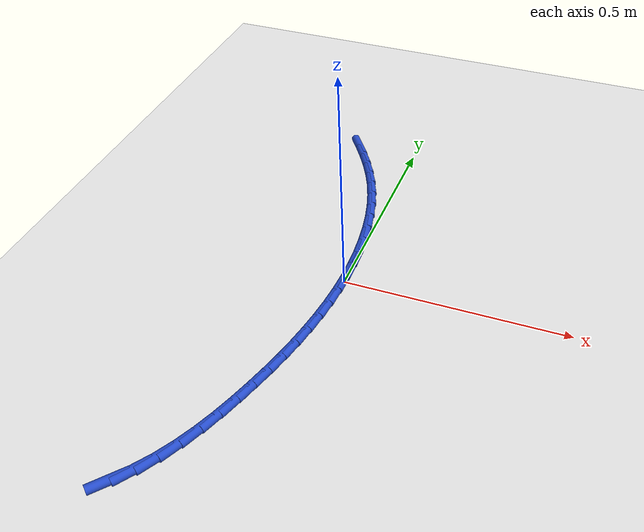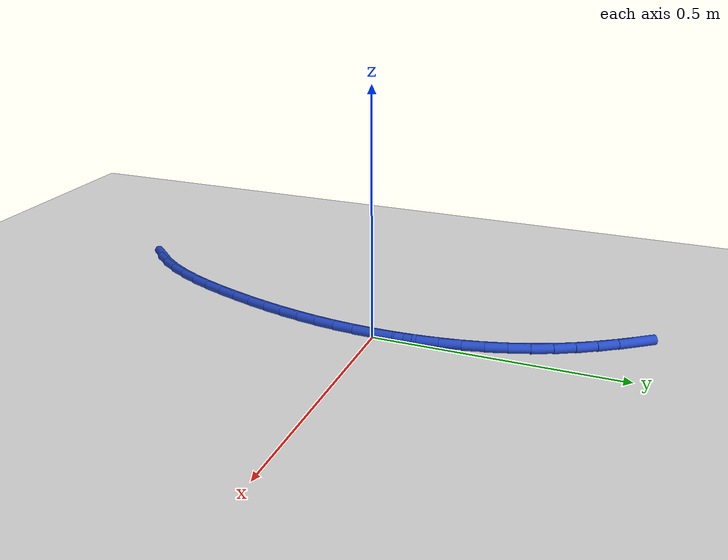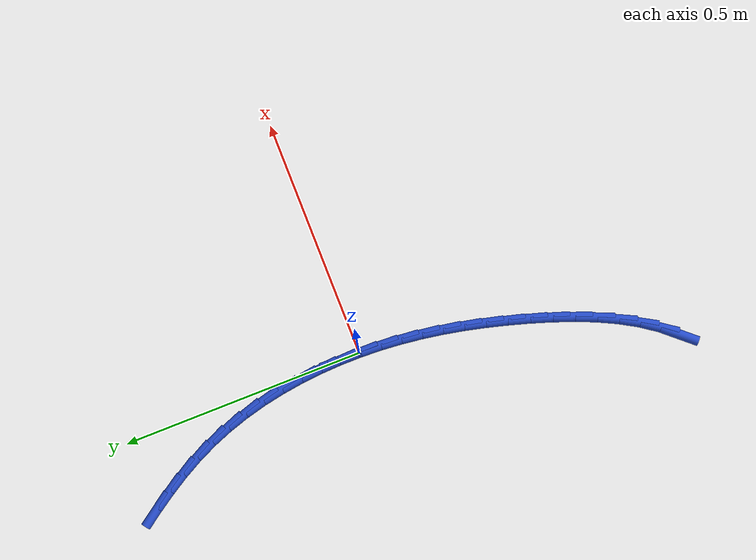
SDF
<sdf version="1.6">
 <world name="default">
  <model name="ground_plane">
   <static>1</static>
   <link name="link">
    <collision name="collision">
     <geometry><plane><normal>0 0 1</normal><size>100 100</size></plane></geometry>
     <surface><friction><ode><mu>100</mu><mu2>50</mu2></ode></friction></surface>
    </collision>
    <visual name="visual">
     <cast_shadows>0</cast_shadows>
     <geometry><plane><normal>0 0 1</normal><size>100 100</size></plane></geometry>
     <material>
      <script><uri>file://media/materials/scripts/gazebo.material</uri><name>Gazebo/WhiteGlow</name></script>
     </material>
    </visual>
   </link>
  </model>
  <model name="line">
   <link name="link_0">
    <pose>-2.168404344971009e-17 -2.7755575615628914e-17 0.01 0 1.57 -1.5700291982250192</pose>
    <collision name="collision">
     <geometry><cylinder><radius>0.01</radius><length>0.08</length></cylinder></geometry>
    </collision>
    <visual name="visual">
     <material>
      <script><name>Gazebo/Blue</name><uri>file://media/materials/scripts/gazebo.material</uri></script>
     </material>
     <geometry><cylinder><radius>0.01</radius><length>0.08</length></cylinder></geometry>
    </visual>
   </link>
   <link name="link_1">
    <pose>-3.3373400542923814e-05 0.043504303329024246 0.01 0 1.57 -1.5256582486725725</pose>
    <collision name="collision">
     <geometry><cylinder><radius>0.01</radius><length>0.08</length></cylinder></geometry>
    </collision>
    <visual name="visual">
     <material>
      <script><name>Gazebo/Blue</name><uri>file://media/materials/scripts/gazebo.material</uri></script>
     </material>
     <geometry><cylinder><radius>0.01</radius><length>0.08</length></cylinder></geometry>
    </visual>
   </link>
   <link name="link_2">
    <pose>-0.0020077036784223834 0.08721438833815535 0.01 0 1.57 -1.4792710099667985</pose>
    <collision name="collision">
     <geometry><cylinder><radius>0.01</radius><length>0.08</length></cylinder></geometry>
    </collision>
    <visual name="visual">
     <material>
      <script><name>Gazebo/Blue</name><uri>file://media/materials/scripts/gazebo.material</uri></script>
     </material>
     <geometry><cylinder><radius>0.01</radius><length>0.08</length></cylinder></geometry>
    </visual>
   </link>
   <link name="link_3">
    <pose>-0.006017554612834082 0.13090337112714434 0.01 0 1.57 -1.4303867277252909</pose>
    <collision name="collision">
     <geometry><cylinder><radius>0.01</radius><length>0.08</length></cylinder></geometry>
    </collision>
    <visual name="visual">
     <material>
      <script><name>Gazebo/Blue</name><uri>file://media/materials/scripts/gazebo.material</uri></script>
     </material>
     <geometry><cylinder><radius>0.01</radius><length>0.08</length></cylinder></geometry>
    </visual>
   </link>
   <link name="link_4">
    <pose>-0.012157489982973701 0.17434436779574228 0.01 0 1.57 -1.3785227347976274</pose>
    <collision name="collision">
     <geometry><cylinder><radius>0.01</radius><length>0.08</length></cylinder></geometry>
    </collision>
    <visual name="visual">
     <material>
      <script><name>Gazebo/Blue</name><uri>file://media/materials/scripts/gazebo.material</uri></script>
     </material>
     <geometry><cylinder><radius>0.01</radius><length>0.08</length></cylinder></geometry>
    </visual>
   </link>
   <link name="link_5">
    <pose>-0.020522073568036918 0.2173104944437 0.01 0 1.57 -1.3231982960085122</pose>
    <collision name="collision">
     <geometry><cylinder><radius>0.01</radius><length>0.08</length></cylinder></geometry>
    </collision>
    <visual name="visual">
     <material>
      <script><name>Gazebo/Blue</name><uri>file://media/materials/scripts/gazebo.material</uri></script>
     </material>
     <geometry><cylinder><radius>0.01</radius><length>0.08</length></cylinder></geometry>
    </visual>
   </link>
   <link name="link_6">
    <pose>-0.0312058691472194 0.25957486717076844 0.01 0 1.57 -1.263945834330037</pose>
    <collision name="collision">
     <geometry><cylinder><radius>0.01</radius><length>0.08</length></cylinder></geometry>
    </collision>
    <visual name="visual">
     <material>
      <script><name>Gazebo/Blue</name><uri>file://media/materials/scripts/gazebo.material</uri></script>
     </material>
     <geometry><cylinder><radius>0.01</radius><length>0.08</length></cylinder></geometry>
    </visual>
   </link>
   <link name="link_7">
    <pose>-0.044303440499716844 0.30091060207669873 0.01 0 1.57 -1.2003315872761966</pose>
    <collision name="collision">
     <geometry><cylinder><radius>0.01</radius><length>0.08</length></cylinder></geometry>
    </collision>
    <visual name="visual">
     <material>
      <script><name>Gazebo/Blue</name><uri>file://media/materials/scripts/gazebo.material</uri></script>
     </material>
     <geometry><cylinder><radius>0.01</radius><length>0.08</length></cylinder></geometry>
    </visual>
   </link>
   <link name="link_8">
    <pose>-0.05990935140472492 0.3410908152612417 0.01 0 1.57 -1.1340542222167505</pose>
    <collision name="collision">
     <geometry><cylinder><radius>0.01</radius><length>0.08</length></cylinder></geometry>
    </collision>
    <visual name="visual">
     <material>
      <script><name>Gazebo/Blue</name><uri>file://media/materials/scripts/gazebo.material</uri></script>
     </material>
     <geometry><cylinder><radius>0.01</radius><length>0.08</length></cylinder></geometry>
    </visual>
   </link>
   <link name="link_9">
    <pose>-0.07805070515592961 0.3799534872015394 0.01 0 1.57 -1.0740796577184268</pose>
    <collision name="collision">
     <geometry><cylinder><radius>0.01</radius><length>0.08</length></cylinder></geometry>
    </collision>
    <visual name="visual">
     <material>
      <script><name>Gazebo/Blue</name><uri>file://media/materials/scripts/gazebo.material</uri></script>
     </material>
     <geometry><cylinder><radius>0.01</radius><length>0.08</length></cylinder></geometry>
    </visual>
   </link>
   <link name="link_10">
    <pose>-0.0984650277981196 0.4176150317096617 0.01 0 1.57 -1.0232610814227583</pose>
    <collision name="collision">
     <geometry><cylinder><radius>0.01</radius><length>0.08</length></cylinder></geometry>
    </collision>
    <visual name="visual">
     <material>
      <script><name>Gazebo/Blue</name><uri>file://media/materials/scripts/gazebo.material</uri></script>
     </material>
     <geometry><cylinder><radius>0.01</radius><length>0.08</length></cylinder></geometry>
    </visual>
   </link>
   <link name="link_11">
    <pose>-0.12081216166519879 0.4542665567760833 0.01 0 1.57 -0.9818017492618193</pose>
    <collision name="collision">
     <geometry><cylinder><radius>0.01</radius><length>0.08</length></cylinder></geometry>
    </collision>
    <visual name="visual">
     <material>
      <script><name>Gazebo/Blue</name><uri>file://media/materials/scripts/gazebo.material</uri></script>
     </material>
     <geometry><cylinder><radius>0.01</radius><length>0.08</length></cylinder></geometry>
    </visual>
   </link>
   <link name="link_12">
    <pose>-0.14475194814825101 0.49009917129781655 0.01 0 1.57 -0.9496824390336122</pose>
    <collision name="collision">
     <geometry><cylinder><radius>0.01</radius><length>0.08</length></cylinder></geometry>
    </collision>
    <visual name="visual">
     <material>
      <script><name>Gazebo/Blue</name><uri>file://media/materials/scripts/gazebo.material</uri></script>
     </material>
     <geometry><cylinder><radius>0.01</radius><length>0.08</length></cylinder></geometry>
    </visual>
   </link>
   <link name="link_165">
    <pose>-0.20112016034670072 -0.6139545532904014 0.01 0 1.57 0.8503066563975215</pose>
    <collision name="collision">
     <geometry><cylinder><radius>0.01</radius><length>0.08</length></cylinder></geometry>
    </collision>
    <visual name="visual">
     <material>
      <script><name>Gazebo/Blue</name><uri>file://media/materials/scripts/gazebo.material</uri></script>
     </material>
     <geometry><cylinder><radius>0.01</radius><length>0.08</length></cylinder></geometry>
    </visual>
   </link>
   <link name="link_166">
    <pose>-0.1732374304666557 -0.5821950928182508 0.01 0 1.57 0.9575537027194163</pose>
    <collision name="collision">
     <geometry><cylinder><radius>0.01</radius><length>0.08</length></cylinder></geometry>
    </collision>
    <visual name="visual">
     <material>
      <script><name>Gazebo/Blue</name><uri>file://media/materials/scripts/gazebo.material</uri></script>
     </material>
     <geometry><cylinder><radius>0.01</radius><length>0.08</length></cylinder></geometry>
    </visual>
   </link>
   <link name="link_167">
    <pose>-0.14844036895661325 -0.5469598042969337 0.01 0 1.57 1.0464601028610965</pose>
    <collision name="collision">
     <geometry><cylinder><radius>0.01</radius><length>0.08</length></cylinder></geometry>
    </collision>
    <visual name="visual">
     <material>
      <script><name>Gazebo/Blue</name><uri>file://media/materials/scripts/gazebo.material</uri></script>
     </material>
     <geometry><cylinder><radius>0.01</radius><length>0.08</length></cylinder></geometry>
    </visual>
   </link>
   <link name="link_168">
    <pose>-0.12642194982595534 -0.5088876506037834 0.01 0 1.57 1.118902465333602</pose>
    <collision name="collision">
     <geometry><cylinder><radius>0.01</radius><length>0.08</length></cylinder></geometry>
    </collision>
    <visual name="visual">
     <material>
      <script><name>Gazebo/Blue</name><uri>file://media/materials/scripts/gazebo.material</uri></script>
     </material>
     <geometry><cylinder><radius>0.01</radius><length>0.08</length></cylinder></geometry>
    </visual>
   </link>
   <link name="link_169">
    <pose>-0.1068751470840638 -0.4686175946161332 0.01 0 1.57 1.1769535304213086</pose>
    <collision name="collision">
     <geometry><cylinder><radius>0.01</radius><length>0.08</length></cylinder></geometry>
    </collision>
    <visual name="visual">
     <material>
      <script><name>Gazebo/Blue</name><uri>file://media/materials/scripts/gazebo.material</uri></script>
     </material>
     <geometry><cylinder><radius>0.01</radius><length>0.08</length></cylinder></geometry>
    </visual>
   </link>
   <link name="link_170">
    <pose>-0.0894929347403203 -0.42678859921131573 0.01 0 1.57 1.2224475376115629</pose>
    <collision name="collision">
     <geometry><cylinder><radius>0.01</radius><length>0.08</length></cylinder></geometry>
    </collision>
    <visual name="visual">
     <material>
      <script><name>Gazebo/Blue</name><uri>file://media/materials/scripts/gazebo.material</uri></script>
     </material>
     <geometry><cylinder><radius>0.01</radius><length>0.08</length></cylinder></geometry>
    </visual>
   </link>
   <link name="link_171">
    <pose>-0.07396828680410747 -0.384039627266666 0.01 0 1.57 1.2567880307506496</pose>
    <collision name="collision">
     <geometry><cylinder><radius>0.01</radius><length>0.08</length></cylinder></geometry>
    </collision>
    <visual name="visual">
     <material>
      <script><name>Gazebo/Blue</name><uri>file://media/materials/scripts/gazebo.material</uri></script>
     </material>
     <geometry><cylinder><radius>0.01</radius><length>0.08</length></cylinder></geometry>
    </visual>
   </link>
   <link name="link_172">
    <pose>-0.05999417811168953 -0.3410096400640989 0.01 0 1.57 1.2831716289179815</pose>
    <collision name="collision">
     <geometry><cylinder><radius>0.01</radius><length>0.08</length></cylinder></geometry>
    </collision>
    <visual name="visual">
     <material>
      <script><name>Gazebo/Blue</name><uri>file://media/materials/scripts/gazebo.material</uri></script>
     </material>
     <geometry><cylinder><radius>0.01</radius><length>0.08</length></cylinder></geometry>
    </visual>
   </link>
   <link name="link_173">
    <pose>-0.04733171453915028 -0.29820614435674536 0.01 0 1.57 1.3104892077061612</pose>
    <collision name="collision">
     <geometry><cylinder><radius>0.01</radius><length>0.08</length></cylinder></geometry>
    </collision>
    <visual name="visual">
     <material>
      <script><name>Gazebo/Blue</name><uri>file://media/materials/scripts/gazebo.material</uri></script>
     </material>
     <geometry><cylinder><radius>0.01</radius><length>0.08</length></cylinder></geometry>
    </visual>
   </link>
   <link name="link_174">
    <pose>-0.03599597025078591 -0.2556466311612707 0.01 0 1.57 1.3407012849338154</pose>
    <collision name="collision">
     <geometry><cylinder><radius>0.01</radius><length>0.08</length></cylinder></geometry>
    </collision>
    <visual name="visual">
     <material>
      <script><name>Gazebo/Blue</name><uri>file://media/materials/scripts/gazebo.material</uri></script>
     </material>
     <geometry><cylinder><radius>0.01</radius><length>0.08</length></cylinder></geometry>
    </visual>
   </link>
   <link name="link_175">
    <pose>-0.026061184362877268 -0.21323443646449847 0.01 0 1.57 1.3736894995742863</pose>
    <collision name="collision">
     <geometry><cylinder><radius>0.01</radius><length>0.08</length></cylinder></geometry>
    </collision>
    <visual name="visual">
     <material>
      <script><name>Gazebo/Blue</name><uri>file://media/materials/scripts/gazebo.material</uri></script>
     </material>
     <geometry><cylinder><radius>0.01</radius><length>0.08</length></cylinder></geometry>
    </visual>
   </link>
   <link name="link_176">
    <pose>-0.01760159599170506 -0.17087289625325144 0.01 0 1.57 1.409269671303581</pose>
    <collision name="collision">
     <geometry><cylinder><radius>0.01</radius><length>0.08</length></cylinder></geometry>
    </collision>
    <visual name="visual">
     <material>
      <script><name>Gazebo/Blue</name><uri>file://media/materials/scripts/gazebo.material</uri></script>
     </material>
     <geometry><cylinder><radius>0.01</radius><length>0.08</length></cylinder></geometry>
    </visual>
   </link>
   <link name="link_177">
    <pose>-0.01069144425355049 -0.128465346514355 0.01 0 1.57 1.44718887085148</pose>
    <collision name="collision">
     <geometry><cylinder><radius>0.01</radius><length>0.08</length></cylinder></geometry>
    </collision>
    <visual name="visual">
     <material>
      <script><name>Gazebo/Blue</name><uri>file://media/materials/scripts/gazebo.material</uri></script>
     </material>
     <geometry><cylinder><radius>0.01</radius><length>0.08</length></cylinder></geometry>
    </visual>
   </link>
   <link name="link_178">
    <pose>-0.005404968264694216 -0.08591512323463187 0.01 0 1.57 1.4871267792730105</pose>
    <collision name="collision">
     <geometry><cylinder><radius>0.01</radius><length>0.08</length></cylinder></geometry>
    </collision>
    <visual name="visual">
     <material>
      <script><name>Gazebo/Blue</name><uri>file://media/materials/scripts/gazebo.material</uri></script>
     </material>
     <geometry><cylinder><radius>0.01</radius><length>0.08</length></cylinder></geometry>
    </visual>
   </link>
   <link name="link_179">
    <pose>-0.001816407141417098 -0.04312556240090561 0.01 0 1.57 1.528702170287972</pose>
    <collision name="collision">
     <geometry><cylinder><radius>0.01</radius><length>0.08</length></cylinder></geometry>
    </collision>
    <visual name="visual">
     <material>
      <script><name>Gazebo/Blue</name><uri>file://media/materials/scripts/gazebo.material</uri></script>
     </material>
     <geometry><cylinder><radius>0.01</radius><length>0.08</length></cylinder></geometry>
    </visual>
   </link>
   <link name="link_180">
    <pose>-8.673617379884035e-19 1.5959455978986625e-16 0.01 0 1.57 -1.5701079160542257</pose>
    <collision name="collision">
     <geometry><cylinder><radius>0.01</radius><length>0.08</length></cylinder></geometry>
    </collision>
    <visual name="visual">
     <material>
      <script><name>Gazebo/Blue</name><uri>file://media/materials/scripts/gazebo.material</uri></script>
     </material>
     <geometry><cylinder><radius>0.01</radius><length>0.08</length></cylinder></geometry>
    </visual>
   </link>
   <link name="link_181">
    <pose>-2.998595672376418e-05 0.04355822798126184 0.01 0 1.57 -1.5701079160542264</pose>
    <collision name="collision">
     <geometry><cylinder><radius>0.01</radius><length>0.08</length></cylinder></geometry>
    </collision>
    <visual name="visual">
     <material>
      <script><name>Gazebo/Blue</name><uri>file://media/materials/scripts/gazebo.material</uri></script>
     </material>
     <geometry><cylinder><radius>0.01</radius><length>0.08</length></cylinder></geometry>
    </visual>
   </link>
  </model>
 </world>
</sdf>
